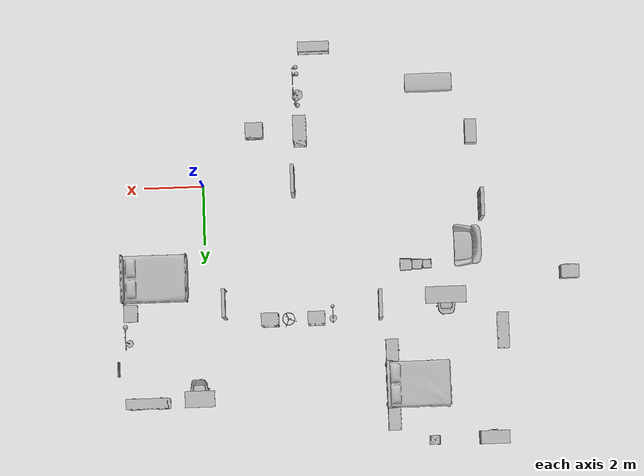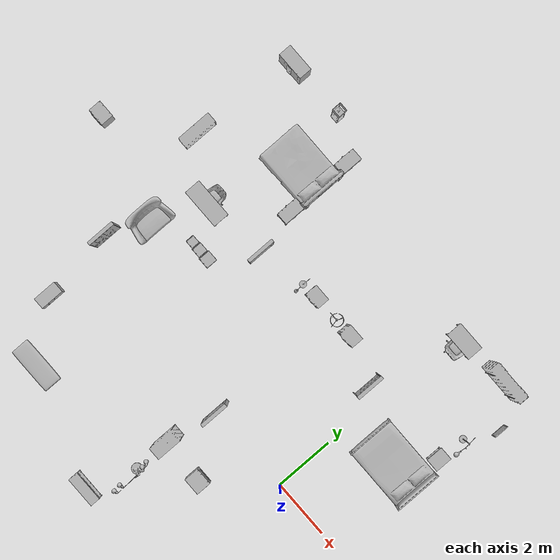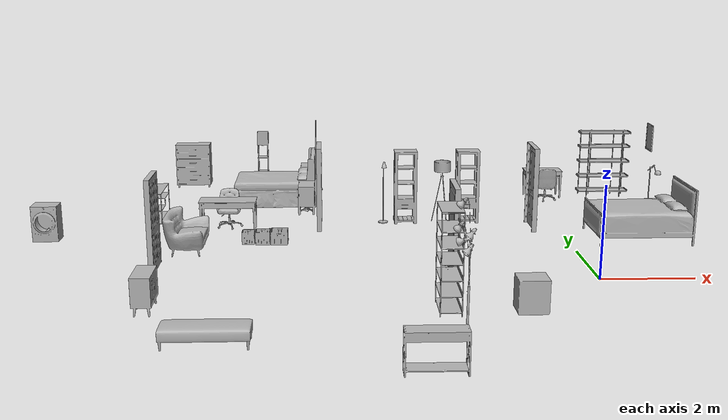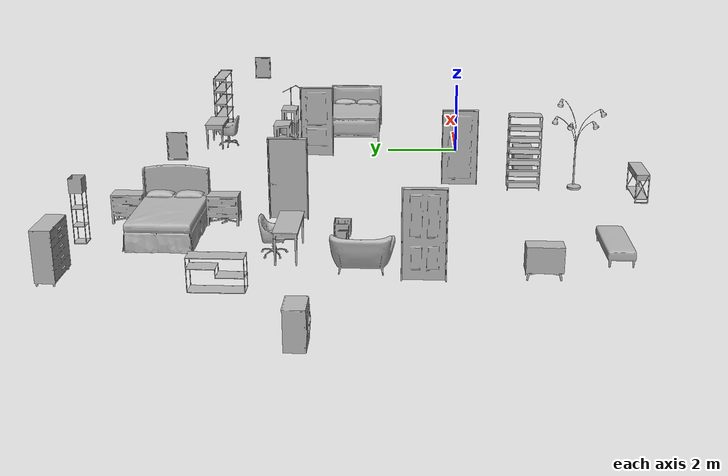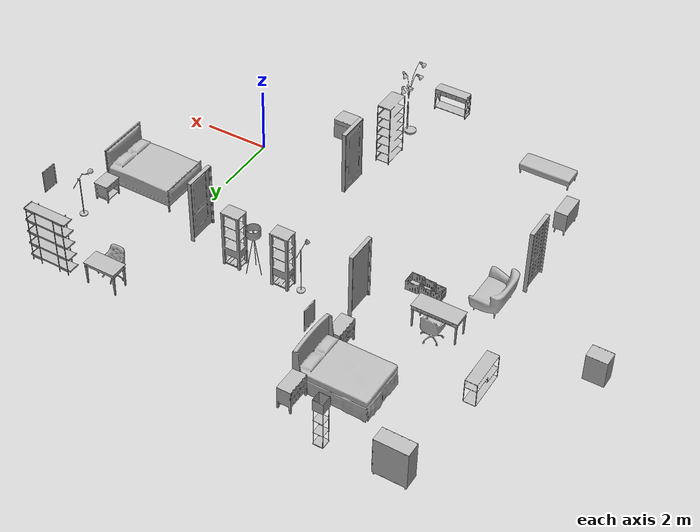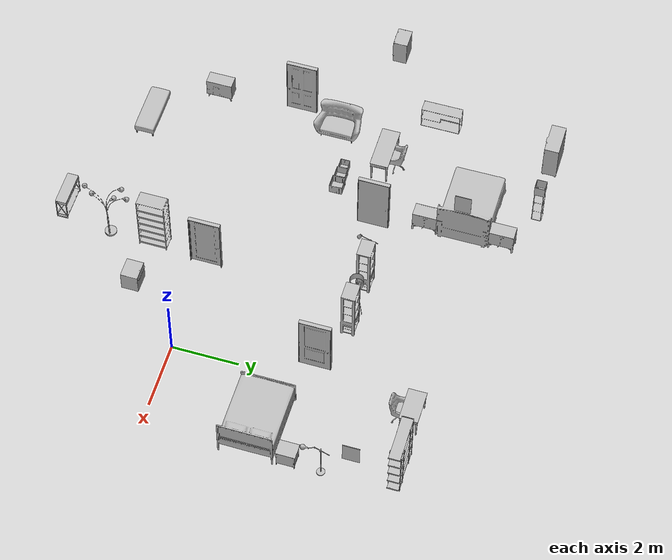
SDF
<sdf version="1.6">
 <world name="plasys_house">
  <model name="Headboards_O84d2b8173e76_lod0_0">
   <include>
    <uri>model://Headboards_O84d2b8173e76_lod0</uri>
    <pose>-7.051275837421418 6.946909320354462 0.0 0.0 0.0 4.71</pose>
    <static>true</static>
   </include>
  </model>
  <model name="Nightstands_O86bb94a2231c_lod0_1">
   <include>
    <uri>model://Nightstands_O86bb94a2231c_lod0</uri>
    <pose>-6.183524486422539 5.799987870454788 0.0 0.0 0.0 4.710000000000001</pose>
    <static>true</static>
   </include>
  </model>
  <model name="Nightstands_O86bb94a2231c_lod0_2">
   <include>
    <uri>model://Nightstands_O86bb94a2231c_lod0</uri>
    <pose>-6.183524486422539 8.099987870454788 0.0 0.0 0.0 4.710000000000001</pose>
    <static>true</static>
   </include>
  </model>
  <model name="HomeOfficeDesks_O593758bd9853_lod0_3">
   <include>
    <uri>model://HomeOfficeDesks_O593758bd9853_lod0</uri>
    <pose>-8.05 4.000014096498489 0.0 0.0 0.0 3.14</pose>
    <static>true</static>
   </include>
  </model>
  <model name="HomeOfficeDeskChairs_Oaed1cbd04270_lod0_4">
   <include>
    <uri>model://HomeOfficeDeskChairs_Oaed1cbd04270_lod0</uri>
    <pose>-8.068350660800935 4.34404425919056 0.0 0.0 0.0 0.0</pose>
    <static>true</static>
   </include>
  </model>
  <model name="FloorLamps_Oc1b0ac823eb9_lod0_5">
   <include>
    <uri>model://FloorLamps_Oc1b0ac823eb9_lod0</uri>
    <pose>-7.499942898750305 8.850000178813934 0.0 0.0 0.0 0.0</pose>
    <static>true</static>
   </include>
  </model>
  <model name="Bookcases_Of801682c0062_lod0_6">
   <include>
    <uri>model://Bookcases_Of801682c0062_lod0</uri>
    <pose>-9.94999475479126 5.2498297691345215 0.0 0.0 0.0 1.57</pose>
    <static>true</static>
   </include>
  </model>
  <model name="Dressers_O3026d3820106_lod0_7">
   <include>
    <uri>model://Dressers_O3026d3820106_lod0</uri>
    <pose>-9.500395596027374 8.800210866332055 0.0 0.0 0.0 0.0</pose>
    <static>true</static>
   </include>
  </model>
  <model name="aws_robomaker_residential_PortraitA_01_plasys">
   <include>
    <uri>model://aws_robomaker_residential_PortraitA_01_plasys</uri>
    <pose>-5.95 6.9 1.5 0.0 0.0 1.57</pose>
    <static>true</static>
   </include>
  </model>
  <light name="Main_Bedroom_Ceiling_Light" type="point">
   <pose>-8.0 6.3 3.000000 0 -0 0</pose>
   <diffuse>0.25 0.25 0.25 1</diffuse>
   <specular>0.1 0.1 0.1 1</specular>
   <attenuation>
    <range>20</range>
    <constant>0.32</constant>
    <linear>0.01</linear>
    <quadratic>0.03</quadratic>
   </attenuation>
   <cast_shadows>0</cast_shadows>
   <direction>0 0 -1</direction>
  </light>
  <model name="Ottomans_Oe0e3f5670b60_lod0_9">
   <include>
    <uri>model://Ottomans_Oe0e3f5670b60_lod0</uri>
    <pose>-7.75 -3.2500356435775757 0.0 0.0 0.0 0.0</pose>
    <static>true</static>
   </include>
  </model>
  <model name="Bookcases_Ocf3b7a3af58b_lod0_11">
   <include>
    <uri>model://Bookcases_Ocf3b7a3af58b_lod0</uri>
    <pose>-3.3498592734336854 -1.6500000000000001 0.0 0.0 0.0 4.71</pose>
    <static>true</static>
   </include>
  </model>
  <model name="LivingRoomChairs_Obc1361750757_lod0_12">
   <include>
    <uri>model://LivingRoomChairs_Obc1361750757_lod0</uri>
    <pose>-8.797515919804573 2.350000059604645 0.0 0.0 0.0 1.57</pose>
    <static>true</static>
   </include>
  </model>
  <model name="FloorLamps_O3abb34e1a719_lod0_13">
   <include>
    <uri>model://FloorLamps_O3abb34e1a719_lod0</uri>
    <pose>-3.2999999627470973 -3.0197394967079165 0.0 0.0 0.0 4.71</pose>
    <static>true</static>
   </include>
  </model>
  <model name="HomeStorageBasketsBinsAndContainers_Oa5676f43a3ee_lod0_15">
   <include>
    <uri>model://HomeStorageBasketsBinsAndContainers_Oa5676f43a3ee_lod0</uri>
    <pose>-7.100246167182923 2.9000000298023227 0.0 0.0 0.0 0.0</pose>
    <static>true</static>
   </include>
  </model>
  <model name="Cabinets_O34efdbc7cd71_lod0_17">
   <include>
    <uri>model://Cabinets_O34efdbc7cd71_lod0</uri>
    <pose>-3.9000000000000004 -4.558231431245804 0.0 0.0 0.0 3.14</pose>
    <static>true</static>
   </include>
  </model>
  <model name="AudioVideoMediaCabinets_O8c11fbab8c6f_lod0_18">
   <include>
    <uri>model://AudioVideoMediaCabinets_O8c11fbab8c6f_lod0</uri>
    <pose>-9.105899585783481 -1.4998804032802582 0.0 0.0 0.0 1.57</pose>
    <static>true</static>
   </include>
  </model>
  <light name="Living_Room_Ceiling_Light_1" type="point">
   <pose>-6.25 2.25 3.000000 0 -0 0</pose>
   <diffuse>0.25 0.25 0.25 1</diffuse>
   <specular>0.1 0.1 0.1 1</specular>
   <attenuation>
    <range>20</range>
    <constant>0.32</constant>
    <linear>0.01</linear>
    <quadratic>0.03</quadratic>
   </attenuation>
   <cast_shadows>0</cast_shadows>
   <direction>0 0 -1</direction>
  </light>
  <light name="Living_Room_Ceiling_Light_2" type="point">
   <pose>-6.25 -2.5 3.000000 0 -0 0</pose>
   <diffuse>0.25 0.25 0.25 1</diffuse>
   <specular>0.1 0.1 0.1 1</specular>
   <attenuation>
    <range>20</range>
    <constant>0.32</constant>
    <linear>0.01</linear>
    <quadratic>0.03</quadratic>
   </attenuation>
   <cast_shadows>0</cast_shadows>
   <direction>0 0 -1</direction>
  </light>
  <model name="ClothesDryer_bb487c6818dc_lod0_21">
   <include>
    <uri>model://ClothesDryer_bb487c6818dc_lod0</uri>
    <pose>-12.25 3.3435350567102433 0.0 0.0 0.0 0.0</pose>
    <static>true</static>
   </include>
  </model>
  <light name="Bathroom_Ceiling_Light" type="point">
   <pose>-11.0 1.05 3.000000 0 -0 0</pose>
   <diffuse>0.25 0.25 0.25 1</diffuse>
   <specular>0.1 0.1 0.1 1</specular>
   <attenuation>
    <range>20</range>
    <constant>0.32</constant>
    <linear>0.01</linear>
    <quadratic>0.03</quadratic>
   </attenuation>
   <cast_shadows>0</cast_shadows>
   <direction>0 0 -1</direction>
  </light>
  <model name="DishWasher_f2d1aeaead9b_lod0_23">
   <include>
    <uri>model://DishWasher_f2d1aeaead9b_lod0</uri>
    <pose>-1.8000070333480835 -1.8073143109679223 0.0 0.0 0.0 3.14</pose>
    <static>true</static>
   </include>
  </model>
  <light name="Kitchen_Ceiling_Light_1" type="point">
   <pose>0.0 0.0 3.000000 0 -0 0</pose>
   <diffuse>0.25 0.25 0.25 1</diffuse>
   <specular>0.1 0.1 0.1 1</specular>
   <attenuation>
    <range>20</range>
    <constant>0.32</constant>
    <linear>0.01</linear>
    <quadratic>0.03</quadratic>
   </attenuation>
   <cast_shadows>0</cast_shadows>
   <direction>0 0 -1</direction>
  </light>
  <model name="Headboards_Occ57434fb9f0_lod0_30">
   <include>
    <uri>model://Headboards_Occ57434fb9f0_lod0</uri>
    <pose>1.7022281408309938 3.100017046928406 0.0 0.0 0.0 4.71</pose>
    <static>true</static>
   </include>
  </model>
  <model name="Nightstands_O14c5f5d1199b_lod0_31">
   <include>
    <uri>model://Nightstands_O14c5f5d1199b_lod0</uri>
    <pose>2.560601028800011 4.2501323819160465 0.0 0.0 0.0 4.710000000000001</pose>
    <static>true</static>
   </include>
  </model>
  <model name="HomeOfficeDesks_Oab58b4fda1f7_lod0_33">
   <include>
    <uri>model://HomeOfficeDesks_Oab58b4fda1f7_lod0</uri>
    <pose>0.30000000000000004 7.200071614980698 0.0 0.0 0.0 0.0</pose>
    <static>true</static>
   </include>
  </model>
  <model name="HomeOfficeDeskChairs_Oaed1cbd04270_lod0_34">
   <include>
    <uri>model://HomeOfficeDeskChairs_Oaed1cbd04270_lod0</uri>
    <pose>0.3183506608009339 6.855955740809441 0.0 0.0 0.0 3.1399999999999997</pose>
    <static>true</static>
   </include>
  </model>
  <model name="Bookcases_Oe43e7e39f537_lod0_35">
   <include>
    <uri>model://Bookcases_Oe43e7e39f537_lod0</uri>
    <pose>2.0 7.3000001341104515 0.0 0.0 0.0 0.0</pose>
    <static>true</static>
   </include>
  </model>
  <model name="FloorLamps_Oa651b7cbe4d7_lod0_36">
   <include>
    <uri>model://FloorLamps_Oa651b7cbe4d7_lod0</uri>
    <pose>2.65 5.239001312851906 0.0 0.0 0.0 0.0</pose>
    <static>true</static>
   </include>
  </model>
  <model name="aws_robomaker_residential_PortraitA_02_plasys">
   <include>
    <uri>model://aws_robomaker_residential_PortraitA_02_plasys</uri>
    <pose>2.875 6.15 1.5 0.0 0.0 1.57</pose>
    <static>true</static>
   </include>
  </model>
  <light name="Bedroom_Ceiling_Light_1" type="point">
   <pose>1.0 5.0 3.000000 0 -0 0</pose>
   <diffuse>0.25 0.25 0.15 1</diffuse>
   <specular>0.1 0.1 0.1 1</specular>
   <attenuation>
    <range>20</range>
    <constant>0.32</constant>
    <linear>0.01</linear>
    <quadratic>0.03</quadratic>
   </attenuation>
   <cast_shadows>0</cast_shadows>
   <direction>0 0 -1</direction>
  </light>
  <model name="Bookcases_Oea630f7d6252_lod0_37">
   <include>
    <uri>model://Bookcases_Oea630f7d6252_lod0</uri>
    <pose>-2.148098075389862 4.657662504911423 0.0 0.0 0.0 0.0</pose>
    <static>true</static>
   </include>
  </model>
  <model name="Bookcases_Oea630f7d6252_lod0_38">
   <include>
    <uri>model://Bookcases_Oea630f7d6252_lod0</uri>
    <pose>-3.6980980753898622 4.657662504911423 0.0 0.0 0.0 0.0</pose>
    <static>true</static>
   </include>
  </model>
  <model name="FloorLamps_Occ4b77538a7e_lod0_39">
   <include>
    <uri>model://FloorLamps_Occ4b77538a7e_lod0</uri>
    <pose>-4.2499778270721436 4.631874124705791 0.0 0.0 0.0 0.0</pose>
    <static>true</static>
   </include>
  </model>
  <model name="FloorLamps_O75326ec60544_lod0_40">
   <include>
    <uri>model://FloorLamps_O75326ec60544_lod0</uri>
    <pose>-2.7759092628955844 4.658160516619683 0.0 0.0 0.0 0.0</pose>
    <static>true</static>
   </include>
  </model>
  <light name="Hallway_Ceiling_Light_1" type="point">
   <pose>-3.0 4.0 3.000000 0 -0 0</pose>
   <diffuse>0.15 0.15 0.15 1</diffuse>
   <specular>0.1 0.1 0.1 1</specular>
   <attenuation>
    <range>20</range>
    <constant>0.32</constant>
    <linear>0.01</linear>
    <quadratic>0.03</quadratic>
   </attenuation>
   <cast_shadows>0</cast_shadows>
   <direction>0 0 -1</direction>
  </light>
  <model name="door-Main_bedroom-Hallway">
   <include>
    <uri>model://DoorHingedSingleSwingRight_O888a160c5277_lod0</uri>
    <pose>-5.779999999999999 3.8175 0.0 0.0 0.0 6.281592653589794</pose>
    <static>true</static>
   </include>
  </model>
  <model name="door-Kitchen-Living_room">
   <include>
    <uri>model://DoorHingedSingleSwingLeft_O8ab66c006110_lod0</uri>
    <pose>-3.1199999999999997 -0.4325 0.0 0.0 0.0 3.1400000000000006</pose>
    <static>true</static>
   </include>
  </model>
  <model name="door-Bathroom-Living_room">
   <include>
    <uri>model://DoorHingedSingleSwingLeft_O351f940da952_lod0</uri>
    <pose>-9.28 1.4825 0.0 0.0 0.0 0.0</pose>
    <static>true</static>
   </include>
  </model>
  <model name="door-Hallway-Bedroom">
   <include>
    <uri>model://DoorHingedSingleSwingRight_O6596356fe884_lod0</uri>
    <pose>-0.5800000000000001 3.6175 0.0 0.0 0.0 6.281592653589794</pose>
    <static>true</static>
   </include>
  </model>
 </world>
</sdf>

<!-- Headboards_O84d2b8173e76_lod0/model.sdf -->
<sdf version="1.6">
	<model name="Headboards_O84d2b8173e76_lod0">
		<link name="main_link">
			<visual name="visual_RootNode">
				<geometry>
					<mesh>
						<uri>model://Headboards_O84d2b8173e76_lod0/meshes/visual_RootNode.dae</uri>
					</mesh>
				</geometry>
			</visual>
			<collision name="collision_RootNode_lod0_0">
				<geometry>
					<mesh>
						<uri>model://Headboards_O84d2b8173e76_lod0/meshes/collision_RootNode_lod0_0.dae</uri>
					</mesh>
				</geometry>
			</collision>
		</link>
	</model>
</sdf>

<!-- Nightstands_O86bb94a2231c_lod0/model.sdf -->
<sdf version="1.6">
	<model name="Nightstands_O86bb94a2231c_lod0">
		<link name="main_link">
			<visual name="visual_RootNode">
				<geometry>
					<mesh>
						<uri>model://Nightstands_O86bb94a2231c_lod0/meshes/visual_RootNode.dae</uri>
					</mesh>
				</geometry>
			</visual>
			<collision name="collision_RootNode_lod0_0">
				<geometry>
					<mesh>
						<uri>model://Nightstands_O86bb94a2231c_lod0/meshes/collision_RootNode_lod0_0.dae</uri>
					</mesh>
				</geometry>
			</collision>
		</link>
	</model>
</sdf>

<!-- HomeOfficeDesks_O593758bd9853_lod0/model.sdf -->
<sdf version="1.6">
	<model name="HomeOfficeDesks_O593758bd9853_lod0">
		<link name="main_link">
			<visual name="visual_RootNode">
				<geometry>
					<mesh>
						<uri>model://HomeOfficeDesks_O593758bd9853_lod0/meshes/visual_RootNode.dae</uri>
					</mesh>
				</geometry>
			</visual>
			<collision name="collision_RootNode_lod0_0">
				<geometry>
					<mesh>
						<uri>model://HomeOfficeDesks_O593758bd9853_lod0/meshes/collision_RootNode_lod0_0.dae</uri>
					</mesh>
				</geometry>
			</collision>
		</link>
	</model>
</sdf>

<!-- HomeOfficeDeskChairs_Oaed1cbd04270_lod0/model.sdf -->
<sdf version="1.6">
	<model name="HomeOfficeDeskChairs_Oaed1cbd04270_lod0">
		<link name="main_link">
			<visual name="visual_RootNode">
				<geometry>
					<mesh>
						<uri>model://HomeOfficeDeskChairs_Oaed1cbd04270_lod0/meshes/visual_RootNode.dae</uri>
					</mesh>
				</geometry>
			</visual>
			<collision name="collision_RootNode_lod0_0">
				<geometry>
					<mesh>
						<uri>model://HomeOfficeDeskChairs_Oaed1cbd04270_lod0/meshes/collision_RootNode_lod0_0.dae</uri>
					</mesh>
				</geometry>
			</collision>
		</link>
	</model>
</sdf>

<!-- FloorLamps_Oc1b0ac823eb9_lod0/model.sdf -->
<sdf version="1.6">
	<model name="FloorLamps_Oc1b0ac823eb9_lod0">
		<link name="main_link">
			<visual name="visual_RootNode">
				<geometry>
					<mesh>
						<uri>model://FloorLamps_Oc1b0ac823eb9_lod0/meshes/visual_RootNode.dae</uri>
					</mesh>
				</geometry>
			</visual>
			<collision name="collision_RootNode_lod0_0">
				<geometry>
					<mesh>
						<uri>model://FloorLamps_Oc1b0ac823eb9_lod0/meshes/collision_RootNode_lod0_0.dae</uri>
					</mesh>
				</geometry>
			</collision>
		</link>
	</model>
</sdf>

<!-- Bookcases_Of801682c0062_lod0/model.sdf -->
<sdf version="1.6">
	<model name="Bookcases_Of801682c0062_lod0">
		<link name="main_link">
			<visual name="visual_RootNode">
				<geometry>
					<mesh>
						<uri>model://Bookcases_Of801682c0062_lod0/meshes/visual_RootNode.dae</uri>
					</mesh>
				</geometry>
			</visual>
			<collision name="collision_RootNode_lod0_0">
				<geometry>
					<mesh>
						<uri>model://Bookcases_Of801682c0062_lod0/meshes/collision_RootNode_lod0_0.dae</uri>
					</mesh>
				</geometry>
			</collision>
		</link>
	</model>
</sdf>

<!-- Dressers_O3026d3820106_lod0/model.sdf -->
<sdf version="1.6">
	<model name="Dressers_O3026d3820106_lod0">
		<link name="main_link">
			<visual name="visual_RootNode">
				<geometry>
					<mesh>
						<uri>model://Dressers_O3026d3820106_lod0/meshes/visual_RootNode.dae</uri>
					</mesh>
				</geometry>
			</visual>
			<collision name="collision_RootNode_lod0_0">
				<geometry>
					<mesh>
						<uri>model://Dressers_O3026d3820106_lod0/meshes/collision_RootNode_lod0_0.dae</uri>
					</mesh>
				</geometry>
			</collision>
		</link>
	</model>
</sdf>

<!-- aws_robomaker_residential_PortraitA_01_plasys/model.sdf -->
<sdf version="1.6">
  <model name="aws_robomaker_residential_PortraitA_01">
    <link name="link">
      <inertial>
        <mass>1</mass>
      </inertial>
      <collision name="collision">
        <geometry>
          <mesh>
            <uri>model://aws_robomaker_residential_PortraitA_01_plasys/meshes/aws_PortraitA_01_collision.DAE</uri>
            <scale>1 1 1</scale>
          </mesh>
        </geometry>
      </collision>
      <visual name="visual">
	    <geometry>
          <mesh>
            <uri>model://aws_robomaker_residential_PortraitA_01_plasys/meshes/aws_PortraitA_01_visual.DAE</uri>
          </mesh>
        </geometry>
      <meta> <layer> 2 </layer></meta>
</visual>
    </link>
	<static>1</static>
  </model>
</sdf>

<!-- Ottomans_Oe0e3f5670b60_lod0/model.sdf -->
<sdf version="1.6">
	<model name="Ottomans_Oe0e3f5670b60_lod0">
		<link name="main_link">
			<visual name="visual_RootNode">
				<geometry>
					<mesh>
						<uri>model://Ottomans_Oe0e3f5670b60_lod0/meshes/visual_RootNode.dae</uri>
					</mesh>
				</geometry>
			</visual>
			<collision name="collision_RootNode_lod0_0">
				<geometry>
					<mesh>
						<uri>model://Ottomans_Oe0e3f5670b60_lod0/meshes/collision_RootNode_lod0_0.dae</uri>
					</mesh>
				</geometry>
			</collision>
		</link>
	</model>
</sdf>

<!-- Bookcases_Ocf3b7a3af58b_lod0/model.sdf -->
<sdf version="1.6">
	<model name="Bookcases_Ocf3b7a3af58b_lod0">
		<link name="main_link">
			<visual name="visual_RootNode">
				<geometry>
					<mesh>
						<uri>model://Bookcases_Ocf3b7a3af58b_lod0/meshes/visual_RootNode.dae</uri>
					</mesh>
				</geometry>
			</visual>
			<collision name="collision_RootNode_lod0_0">
				<geometry>
					<mesh>
						<uri>model://Bookcases_Ocf3b7a3af58b_lod0/meshes/collision_RootNode_lod0_0.dae</uri>
					</mesh>
				</geometry>
			</collision>
		</link>
	</model>
</sdf>

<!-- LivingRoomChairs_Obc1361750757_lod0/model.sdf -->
<sdf version="1.6">
	<model name="LivingRoomChairs_Obc1361750757_lod0">
		<link name="main_link">
			<visual name="visual_RootNode">
				<geometry>
					<mesh>
						<uri>model://LivingRoomChairs_Obc1361750757_lod0/meshes/visual_RootNode.dae</uri>
					</mesh>
				</geometry>
			</visual>
			<collision name="collision_RootNode_lod0_0">
				<geometry>
					<mesh>
						<uri>model://LivingRoomChairs_Obc1361750757_lod0/meshes/collision_RootNode_lod0_0.dae</uri>
					</mesh>
				</geometry>
			</collision>
		</link>
	</model>
</sdf>

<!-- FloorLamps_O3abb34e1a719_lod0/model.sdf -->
<sdf version="1.6">
	<model name="FloorLamps_O3abb34e1a719_lod0">
		<link name="main_link">
			<visual name="visual_RootNode">
				<geometry>
					<mesh>
						<uri>model://FloorLamps_O3abb34e1a719_lod0/meshes/visual_RootNode.dae</uri>
					</mesh>
				</geometry>
			</visual>
			<collision name="collision_RootNode_lod0_0">
				<geometry>
					<mesh>
						<uri>model://FloorLamps_O3abb34e1a719_lod0/meshes/collision_RootNode_lod0_0.dae</uri>
					</mesh>
				</geometry>
			</collision>
		</link>
	</model>
</sdf>

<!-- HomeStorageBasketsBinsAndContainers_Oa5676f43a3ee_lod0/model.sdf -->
<sdf version="1.6">
	<model name="HomeStorageBasketsBinsAndContainers_Oa5676f43a3ee_lod0">
		<link name="main_link">
			<visual name="visual_RootNode">
				<geometry>
					<mesh>
						<uri>model://HomeStorageBasketsBinsAndContainers_Oa5676f43a3ee_lod0/meshes/visual_RootNode.dae</uri>
					</mesh>
				</geometry>
			</visual>
			<collision name="collision_RootNode_lod0_0">
				<geometry>
					<mesh>
						<uri>model://HomeStorageBasketsBinsAndContainers_Oa5676f43a3ee_lod0/meshes/collision_RootNode_lod0_0.dae</uri>
					</mesh>
				</geometry>
			</collision>
		</link>
	</model>
</sdf>

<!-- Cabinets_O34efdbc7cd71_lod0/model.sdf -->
<sdf version="1.6">
	<model name="Cabinets_O34efdbc7cd71_lod0">
		<link name="main_link">
			<visual name="visual_RootNode">
				<geometry>
					<mesh>
						<uri>model://Cabinets_O34efdbc7cd71_lod0/meshes/visual_RootNode.dae</uri>
					</mesh>
				</geometry>
			</visual>
			<collision name="collision_RootNode_lod0_0">
				<geometry>
					<mesh>
						<uri>model://Cabinets_O34efdbc7cd71_lod0/meshes/collision_RootNode_lod0_0.dae</uri>
					</mesh>
				</geometry>
			</collision>
		</link>
	</model>
</sdf>

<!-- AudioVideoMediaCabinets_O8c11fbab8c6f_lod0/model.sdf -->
<sdf version="1.6">
	<model name="AudioVideoMediaCabinets_O8c11fbab8c6f_lod0">
		<link name="main_link">
			<visual name="visual_RootNode">
				<geometry>
					<mesh>
						<uri>model://AudioVideoMediaCabinets_O8c11fbab8c6f_lod0/meshes/visual_RootNode.dae</uri>
					</mesh>
				</geometry>
			</visual>
			<collision name="collision_RootNode_lod0_0">
				<geometry>
					<mesh>
						<uri>model://AudioVideoMediaCabinets_O8c11fbab8c6f_lod0/meshes/collision_RootNode_lod0_0.dae</uri>
					</mesh>
				</geometry>
			</collision>
		</link>
	</model>
</sdf>

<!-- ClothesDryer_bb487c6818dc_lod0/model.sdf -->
<sdf version='1.6'>
  <model name='18_ClothesDryer'>
    <link name='body'>
	  <inertial>
        <mass>60</mass>
        <pose frame=''>0 0 0 0 0 0</pose>
        <inertia>
          <ixx>4.7857229765</ixx>
          <ixy>0</ixy>
          <ixz>0</ixz>
          <iyy>5.420907189</iyy>
          <iyz>0</iyz>
          <izz>2.9940348365</izz>
        </inertia>
      </inertial>
      <pose frame=''>0 0 0 0 -0 0</pose>
      <self_collide>0</self_collide>
      <kinematic>0</kinematic>
      <gravity>1</gravity>
      <visual name='visual'>
        <geometry>
          <mesh>
            <uri>model://ClothesDryer_bb487c6818dc_lod0/meshes/visual_LowPoly_18_ClothesDryer.dae</uri>
          </mesh>
        </geometry>
		<meta> <layer> 1 </layer></meta>
      </visual>
      <collision name='collision_0'>
        <laser_retro>0</laser_retro>
        <max_contacts>10</max_contacts>
        <pose frame=''>0 0 0 0 -0 0</pose>
        <geometry>
          <mesh>
            <uri>model://ClothesDryer_bb487c6818dc_lod0/meshes/collision_18_ClothesDryer.dae</uri>
            <scale>1 1 1</scale>
          </mesh>
        </geometry>
		<surface>
          <friction>
            <ode>
              <mu>0.6</mu>
              <mu2>0.6</mu2>
              <fdir1>0 0 0</fdir1>
              <slip1>0</slip1>
              <slip2>0</slip2>
            </ode>
            <torsional>
              <coefficient>1</coefficient>
              <patch_radius>0</patch_radius>
              <surface_radius>0</surface_radius>
              <use_patch_radius>1</use_patch_radius>
              <ode>
                <slip>0</slip>
              </ode>
            </torsional>
          </friction>
        </surface>
      </collision>
    </link>
    <static>true</static>
  </model>
</sdf>

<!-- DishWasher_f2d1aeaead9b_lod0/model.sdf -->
<sdf version='1.6'>
  <model name='10_DishWasher'>
    <link name='body'>
	  <inertial>
        <mass>30</mass>
        <pose frame=''>0 0 0 0 0 0</pose>
        <inertia>
          <ixx>1.86624999</ixx>
          <ixy>0</ixy>
          <ixz>0</ixz>
          <iyy>2.09024999</iyy>
          <iyz>0</iyz>
          <izz>1.576</izz>
        </inertia>
      </inertial>
      <pose frame=''>0 0 0 0 -0 0</pose>
      <self_collide>0</self_collide>
      <kinematic>0</kinematic>
      <gravity>1</gravity>
      <visual name='visual'>
        <geometry>
          <mesh>
            <uri>model://DishWasher_f2d1aeaead9b_lod0/meshes/visual_LowPoly_10_DishWasher.dae</uri>
          </mesh>
        </geometry>
		<meta> <layer> 1 </layer></meta>
      </visual>
      <collision name='collision_0'>
        <laser_retro>0</laser_retro>
        <max_contacts>10</max_contacts>
        <pose frame=''>0 0 0 0 -0 0</pose>
        <geometry>
          <mesh>
            <uri>model://DishWasher_f2d1aeaead9b_lod0/meshes/collision_10_DishWasher.dae</uri>
            <scale>1 1 1</scale>
          </mesh>
        </geometry>
		<surface>
          <friction>
            <ode>
              <mu>0.4</mu>
              <mu2>0.4</mu2>
              <fdir1>0 0 0</fdir1>
              <slip1>0</slip1>
              <slip2>0</slip2>
            </ode>
            <torsional>
              <coefficient>1</coefficient>
              <patch_radius>0</patch_radius>
              <surface_radius>0</surface_radius>
              <use_patch_radius>1</use_patch_radius>
              <ode>
                <slip>0</slip>
              </ode>
            </torsional>
          </friction>
        </surface>
      </collision>
    </link>
    <static>true</static>
  </model>
</sdf>

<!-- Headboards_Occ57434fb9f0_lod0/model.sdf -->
<sdf version="1.6">
	<model name="Headboards_Occ57434fb9f0_lod0">
		<link name="main_link">
			<visual name="visual_RootNode">
				<geometry>
					<mesh>
						<uri>model://Headboards_Occ57434fb9f0_lod0/meshes/visual_RootNode.dae</uri>
					</mesh>
				</geometry>
			</visual>
			<collision name="collision_RootNode_lod0_0">
				<geometry>
					<mesh>
						<uri>model://Headboards_Occ57434fb9f0_lod0/meshes/collision_RootNode_lod0_0.dae</uri>
					</mesh>
				</geometry>
			</collision>
		</link>
	</model>
</sdf>

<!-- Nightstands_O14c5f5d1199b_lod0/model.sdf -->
<sdf version="1.6">
	<model name="Nightstands_O14c5f5d1199b_lod0">
		<link name="main_link">
			<visual name="visual_RootNode">
				<geometry>
					<mesh>
						<uri>model://Nightstands_O14c5f5d1199b_lod0/meshes/visual_RootNode.dae</uri>
					</mesh>
				</geometry>
			</visual>
			<collision name="collision_RootNode_lod0_0">
				<geometry>
					<mesh>
						<uri>model://Nightstands_O14c5f5d1199b_lod0/meshes/collision_RootNode_lod0_0.dae</uri>
					</mesh>
				</geometry>
			</collision>
		</link>
	</model>
</sdf>

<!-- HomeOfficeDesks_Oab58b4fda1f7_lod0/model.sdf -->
<sdf version="1.6">
	<model name="HomeOfficeDesks_Oab58b4fda1f7_lod0">
		<link name="main_link">
			<visual name="visual_RootNode">
				<geometry>
					<mesh>
						<uri>model://HomeOfficeDesks_Oab58b4fda1f7_lod0/meshes/visual_RootNode.dae</uri>
					</mesh>
				</geometry>
			</visual>
			<collision name="collision_RootNode_lod0_0">
				<geometry>
					<mesh>
						<uri>model://HomeOfficeDesks_Oab58b4fda1f7_lod0/meshes/collision_RootNode_lod0_0.dae</uri>
					</mesh>
				</geometry>
			</collision>
		</link>
	</model>
</sdf>

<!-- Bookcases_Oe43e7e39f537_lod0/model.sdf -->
<sdf version="1.6">
	<model name="Bookcases_Oe43e7e39f537_lod0">
		<link name="main_link">
			<visual name="visual_RootNode">
				<geometry>
					<mesh>
						<uri>model://Bookcases_Oe43e7e39f537_lod0/meshes/visual_RootNode.dae</uri>
					</mesh>
				</geometry>
			</visual>
			<collision name="collision_RootNode_lod0_0">
				<geometry>
					<mesh>
						<uri>model://Bookcases_Oe43e7e39f537_lod0/meshes/collision_RootNode_lod0_0.dae</uri>
					</mesh>
				</geometry>
			</collision>
		</link>
	</model>
</sdf>

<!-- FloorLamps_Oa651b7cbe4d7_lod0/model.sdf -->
<sdf version="1.6">
	<model name="FloorLamps_Oa651b7cbe4d7_lod0">
		<link name="main_link">
			<visual name="visual_RootNode">
				<geometry>
					<mesh>
						<uri>model://FloorLamps_Oa651b7cbe4d7_lod0/meshes/visual_RootNode.dae</uri>
					</mesh>
				</geometry>
			</visual>
			<collision name="collision_RootNode_lod0_0">
				<geometry>
					<mesh>
						<uri>model://FloorLamps_Oa651b7cbe4d7_lod0/meshes/collision_RootNode_lod0_0.dae</uri>
					</mesh>
				</geometry>
			</collision>
		</link>
	</model>
</sdf>

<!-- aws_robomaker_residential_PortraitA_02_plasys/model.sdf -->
<sdf version="1.6">
  <model name="aws_robomaker_residential_PortraitA_02">
    <link name="link">
      <inertial>
        <mass>1</mass>
      </inertial>
      <collision name="collision">
        <geometry>
          <mesh>
            <uri>model://aws_robomaker_residential_PortraitA_02_plasys/meshes/aws_PortraitA_01_collision.DAE</uri>
            <scale>1 1 1</scale>
          </mesh>
        </geometry>
      </collision>
      <visual name="visual">
	    <geometry>
          <mesh>
            <uri>model://aws_robomaker_residential_PortraitA_02_plasys/meshes/aws_PortraitA_01_visual.DAE</uri>
          </mesh>
        </geometry>
      <meta> <layer> 2 </layer></meta>
</visual>
    </link>
	<static>1</static>
  </model>
</sdf>

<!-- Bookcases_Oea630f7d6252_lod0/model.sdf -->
<sdf version="1.6">
	<model name="Bookcases_Oea630f7d6252_lod0">
		<link name="main_link">
			<visual name="visual_RootNode">
				<geometry>
					<mesh>
						<uri>model://Bookcases_Oea630f7d6252_lod0/meshes/visual_RootNode.dae</uri>
					</mesh>
				</geometry>
			</visual>
			<collision name="collision_RootNode_lod0_0">
				<geometry>
					<mesh>
						<uri>model://Bookcases_Oea630f7d6252_lod0/meshes/collision_RootNode_lod0_0.dae</uri>
					</mesh>
				</geometry>
			</collision>
		</link>
	</model>
</sdf>

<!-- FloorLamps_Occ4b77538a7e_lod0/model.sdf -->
<sdf version="1.6">
	<model name="FloorLamps_Occ4b77538a7e_lod0">
		<link name="main_link">
			<visual name="visual_RootNode">
				<geometry>
					<mesh>
						<uri>model://FloorLamps_Occ4b77538a7e_lod0/meshes/visual_RootNode.dae</uri>
					</mesh>
				</geometry>
			</visual>
			<collision name="collision_RootNode_lod0_0">
				<geometry>
					<mesh>
						<uri>model://FloorLamps_Occ4b77538a7e_lod0/meshes/collision_RootNode_lod0_0.dae</uri>
					</mesh>
				</geometry>
			</collision>
		</link>
	</model>
</sdf>

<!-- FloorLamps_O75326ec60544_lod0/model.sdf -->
<sdf version="1.6">
	<model name="FloorLamps_O75326ec60544_lod0">
		<link name="main_link">
			<visual name="visual_RootNode">
				<geometry>
					<mesh>
						<uri>model://FloorLamps_O75326ec60544_lod0/meshes/visual_RootNode.dae</uri>
					</mesh>
				</geometry>
			</visual>
			<collision name="collision_RootNode_lod0_0">
				<geometry>
					<mesh>
						<uri>model://FloorLamps_O75326ec60544_lod0/meshes/collision_RootNode_lod0_0.dae</uri>
					</mesh>
				</geometry>
			</collision>
		</link>
	</model>
</sdf>

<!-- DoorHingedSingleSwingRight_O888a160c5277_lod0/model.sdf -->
<sdf version="1.6">
	<model name="DoorHingedSingleSwingRight_O888a160c5277_lod0">
		<link name="frame_link">
			<pose>-0.05773276090621948 0.45874738693237305 -0.0 0 0 0</pose>
			<visual name="visual_Door_right_frame_zero_panel_wood_light">
				<geometry>
					<mesh>
						<uri>model://DoorHingedSingleSwingRight_O888a160c5277_lod0/meshes/visual_Door_right_frame_zero_panel_wood_light.dae</uri>
					</mesh>
				</geometry>
				<pose>0 0 0 0 0 0</pose>
			</visual>
			<collision name="collision_Door_right_frame_zero_panel_wood_light_lod0_0">
				<geometry>
					<mesh>
						<uri>model://DoorHingedSingleSwingRight_O888a160c5277_lod0/meshes/collision_Door_right_frame_zero_panel_wood_light_lod0_0.dae</uri>
					</mesh>
				</geometry>
				<pose>0 0 0 0 0 0</pose>
				<surface>
					<contact>
						<collide_bitmask>1</collide_bitmask>
					</contact>
				</surface>
			</collision>
		</link>
		<link name="door_link">
			<pose>0 0 0 0 0 0</pose>
			<inertial>
				<mass>1.0</mass>
				<inertia>
					<ixx>0.41441923703</ixx>
					<ixy>0.0</ixy>
					<ixz>0.0</ixz>
					<iyy>0.073070729875</iyy>
					<iyz>0.0</iyz>
					<izz>0.34294104678</izz>
				</inertia>
			</inertial>
			<visual name="visual_Door_right_door_zero_panel_wood_light">
				<geometry>
					<mesh>
						<uri>model://DoorHingedSingleSwingRight_O888a160c5277_lod0/meshes/visual_Door_right_door_zero_panel_wood_light.dae</uri>
					</mesh>
				</geometry>
				<pose>-0.05773276090621948 0.45874738693237305 -0.0 0 0 0</pose>
			</visual>
			<collision name="collision_Door_right_door_zero_panel_wood_light_lod0_0">
				<geometry>
					<mesh>
						<uri>model://DoorHingedSingleSwingRight_O888a160c5277_lod0/meshes/collision_Door_right_door_zero_panel_wood_light_lod0_0.dae</uri>
					</mesh>
				</geometry>
				<pose>-0.05773276090621948 0.45874738693237305 -0.0 0 0 0</pose>
				<surface>
					<contact>
						<collide_bitmask>1</collide_bitmask>
					</contact>
				</surface>
			</collision>
		</link>
		<joint name="world_joint" type="fixed">
			<child>frame_link</child>
			<parent>world</parent>
			<axis>
				<limit>
					<lower>0</lower>
					<upper>0</upper>
				</limit>
				<xyz>0 1 0</xyz>
				<dynamics>
					<damping>1</damping>
					<spring_reference>0</spring_reference>
					<spring_stiffness>0</spring_stiffness>
				</dynamics>
			</axis>
			<physics>
				<ode>
					<cfm_damping>1</cfm_damping>
					<limit/>
					<cfm>0</cfm>
					<erp>0.2</erp>
				</ode>
			</physics>
		</joint>
		<joint name="hinge_joint" type="revolute">
			<parent>frame_link</parent>
			<child>door_link</child>
			<pose>0 0 0 0 0 0</pose>
			<axis>
				<xyz>0 0 -1</xyz>
				<limit>
					<lower>0</lower>
					<upper>1.5707963267948966</upper>
				</limit>
				<dynamics>
					<damping>1</damping>
					<friction>1</friction>
					<spring_reference>0</spring_reference>
					<spring_stiffness>0</spring_stiffness>
				</dynamics>
				<use_parent_model_frame>0</use_parent_model_frame>
			</axis>
			<physics>
				<ode>
					<cfm_damping>1</cfm_damping>
					<limit>
						<cfm>0</cfm>
						<erp>0.2</erp>
					</limit>
				</ode>
			</physics>
		</joint>
	</model>
</sdf>

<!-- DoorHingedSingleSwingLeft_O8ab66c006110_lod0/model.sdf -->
<sdf version="1.6">
	<model name="DoorHingedSingleSwingLeft_O8ab66c006110_lod0">
		<link name="frame_link">
			<pose>-0.05773424357175827 -0.45874273777008057 -0.0 0 0 0</pose>
			<visual name="visual_Door_left_frame_one_panel_wood_dark">
				<geometry>
					<mesh>
						<uri>model://DoorHingedSingleSwingLeft_O8ab66c006110_lod0/meshes/visual_Door_left_frame_one_panel_wood_dark.dae</uri>
					</mesh>
				</geometry>
				<pose>0 0 0 0 0 0</pose>
			</visual>
			<collision name="Door_left_frame_one_panel_wood_dark_Collision_05">
				<geometry>
					<mesh>
						<uri>model://DoorHingedSingleSwingLeft_O8ab66c006110_lod0/meshes/Door_left_frame_one_panel_wood_dark_Collision_05.dae</uri>
					</mesh>
				</geometry>
				<pose>0 0 0 0 0 0</pose>
				<surface>
					<contact>
						<collide_bitmask>1</collide_bitmask>
					</contact>
				</surface>
			</collision>
		</link>
		<link name="door_link">
			<pose>0 0 0 0 0 0</pose>
			<inertial>
				<mass>1.0</mass>
				<inertia>
					<ixx>0.41441923703</ixx>
					<ixy>0.0</ixy>
					<ixz>0.0</ixz>
					<iyy>0.073070729875</iyy>
					<iyz>0.0</iyz>
					<izz>0.34294104678</izz>
				</inertia>
			</inertial>
			<visual name="visual_Door_left_door_one_panel_wood_dark">
				<geometry>
					<mesh>
						<uri>model://DoorHingedSingleSwingLeft_O8ab66c006110_lod0/meshes/visual_Door_left_door_one_panel_wood_dark.dae</uri>
					</mesh>
				</geometry>
				<pose>-0.05773424357175827 -0.45874273777008057 -0.0 0 0 0</pose>
			</visual>
			<collision name="Door_left_door_one_panel_wood_dark_Collision_06">
				<geometry>
					<mesh>
						<uri>model://DoorHingedSingleSwingLeft_O8ab66c006110_lod0/meshes/Door_left_door_one_panel_wood_dark_Collision_06.dae</uri>
					</mesh>
				</geometry>
				<pose>-0.05773279070854187 -0.45874738693237305 -0.0 0 0 0</pose>
				<surface>
					<contact>
						<collide_bitmask>1</collide_bitmask>
					</contact>
				</surface>
			</collision>
		</link>
		<joint name="world_joint" type="fixed">
			<child>frame_link</child>
			<parent>world</parent>
			<axis>
				<limit>
					<lower>0</lower>
					<upper>0</upper>
				</limit>
				<xyz>0 1 0</xyz>
				<dynamics>
					<damping>1</damping>
					<spring_reference>0</spring_reference>
					<spring_stiffness>0</spring_stiffness>
				</dynamics>
			</axis>
			<physics>
				<ode>
					<cfm_damping>1</cfm_damping>
					<limit/>
					<cfm>0</cfm>
					<erp>0.2</erp>
				</ode>
			</physics>
		</joint>
		<joint name="hinge_joint" type="revolute">
			<parent>frame_link</parent>
			<child>door_link</child>
			<pose>0 0 0 0 0 0</pose>
			<axis>
				<xyz>0 0 1</xyz>
				<limit>
					<lower>0</lower>
					<upper>1.5707963267948966</upper>
				</limit>
				<dynamics>
					<damping>1</damping>
					<friction>1</friction>
					<spring_reference>0</spring_reference>
					<spring_stiffness>0</spring_stiffness>
				</dynamics>
				<use_parent_model_frame>0</use_parent_model_frame>
			</axis>
			<physics>
				<ode>
					<cfm_damping>1</cfm_damping>
					<limit>
						<cfm>0</cfm>
						<erp>0.2</erp>
					</limit>
				</ode>
			</physics>
		</joint>
	</model>
</sdf>

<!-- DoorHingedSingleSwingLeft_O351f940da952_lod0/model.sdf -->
<sdf version="1.6">
	<model name="DoorHingedSingleSwingLeft_O351f940da952_lod0">
		<link name="frame_link">
			<pose>-0.05773424357175827 -0.45874273777008057 -0.0 0 0 0</pose>
			<visual name="visual_Door_left_frame_four_panel_painted">
				<geometry>
					<mesh>
						<uri>model://DoorHingedSingleSwingLeft_O351f940da952_lod0/meshes/visual_Door_left_frame_four_panel_painted.dae</uri>
					</mesh>
				</geometry>
				<pose>0 0 0 0 0 0</pose>
			</visual>
			<collision name="Door_left_frame_four_panel_painted_Collision_03">
				<geometry>
					<mesh>
						<uri>model://DoorHingedSingleSwingLeft_O351f940da952_lod0/meshes/Door_left_frame_four_panel_painted_Collision_03.dae</uri>
					</mesh>
				</geometry>
				<pose>0 0 0 0 0 0</pose>
				<surface>
					<contact>
						<collide_bitmask>1</collide_bitmask>
					</contact>
				</surface>
			</collision>
		</link>
		<link name="door_link">
			<pose>0 0 0 0 0 0</pose>
			<inertial>
				<mass>1.0</mass>
				<inertia>
					<ixx>0.41441923703</ixx>
					<ixy>0.0</ixy>
					<ixz>0.0</ixz>
					<iyy>0.073070729875</iyy>
					<iyz>0.0</iyz>
					<izz>0.34294104678</izz>
				</inertia>
			</inertial>
			<visual name="visual_Door_left_door_four_panel_painted">
				<geometry>
					<mesh>
						<uri>model://DoorHingedSingleSwingLeft_O351f940da952_lod0/meshes/visual_Door_left_door_four_panel_painted.dae</uri>
					</mesh>
				</geometry>
				<pose>-0.05773424357175827 -0.45874273777008057 -0.0 0 0 0</pose>
			</visual>
			<collision name="Door_left_door_four_panel_painted_Collision_02">
				<geometry>
					<mesh>
						<uri>model://DoorHingedSingleSwingLeft_O351f940da952_lod0/meshes/Door_left_door_four_panel_painted_Collision_02.dae</uri>
					</mesh>
				</geometry>
				<pose>-0.05773279070854187 -0.45874738693237305 -0.0 0 0 0</pose>
				<surface>
					<contact>
						<collide_bitmask>1</collide_bitmask>
					</contact>
				</surface>
			</collision>
		</link>
		<joint name="world_joint" type="fixed">
			<child>frame_link</child>
			<parent>world</parent>
			<axis>
				<limit>
					<lower>0</lower>
					<upper>0</upper>
				</limit>
				<xyz>0 1 0</xyz>
				<dynamics>
					<damping>1</damping>
					<spring_reference>0</spring_reference>
					<spring_stiffness>0</spring_stiffness>
				</dynamics>
			</axis>
			<physics>
				<ode>
					<cfm_damping>1</cfm_damping>
					<limit/>
					<cfm>0</cfm>
					<erp>0.2</erp>
				</ode>
			</physics>
		</joint>
		<joint name="hinge_joint" type="revolute">
			<parent>frame_link</parent>
			<child>door_link</child>
			<pose>0 0 0 0 0 0</pose>
			<axis>
				<xyz>0 0 1</xyz>
				<limit>
					<lower>0</lower>
					<upper>1.5707963267948966</upper>
				</limit>
				<dynamics>
					<damping>1</damping>
					<friction>1</friction>
					<spring_reference>0</spring_reference>
					<spring_stiffness>0</spring_stiffness>
				</dynamics>
				<use_parent_model_frame>0</use_parent_model_frame>
			</axis>
			<physics>
				<ode>
					<cfm_damping>1</cfm_damping>
					<limit>
						<cfm>0</cfm>
						<erp>0.2</erp>
					</limit>
				</ode>
			</physics>
		</joint>
	</model>
</sdf>

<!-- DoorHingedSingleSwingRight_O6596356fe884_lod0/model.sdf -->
<sdf version="1.6">
	<model name="DoorHingedSingleSwingRight_O6596356fe884_lod0">
		<link name="frame_link">
			<pose>-0.05773424357175827 0.45874273777008057 -0.0 0 0 0</pose>
			<visual name="visual_Door_right_frame_two_panel_wood_dark">
				<geometry>
					<mesh>
						<uri>model://DoorHingedSingleSwingRight_O6596356fe884_lod0/meshes/visual_Door_right_frame_two_panel_wood_dark.dae</uri>
					</mesh>
				</geometry>
				<pose>0 0 0 0 0 0</pose>
			</visual>
			<collision name="collision_Door_right_frame_two_panel_wood_dark_lod0_0">
				<geometry>
					<mesh>
						<uri>model://DoorHingedSingleSwingRight_O6596356fe884_lod0/meshes/collision_Door_right_frame_two_panel_wood_dark_lod0_0.dae</uri>
					</mesh>
				</geometry>
				<pose>0 0 0 0 0 0</pose>
				<surface>
					<contact>
						<collide_bitmask>1</collide_bitmask>
					</contact>
				</surface>
			</collision>
		</link>
		<link name="door_link">
			<pose>0 0 0 0 0 0</pose>
			<inertial>
				<mass>1.0</mass>
				<inertia>
					<ixx>0.41441923703</ixx>
					<ixy>0.0</ixy>
					<ixz>0.0</ixz>
					<iyy>0.073070729875</iyy>
					<iyz>0.0</iyz>
					<izz>0.34294104678</izz>
				</inertia>
			</inertial>
			<visual name="visual_Door_right_door_two_panel_wood_dark">
				<geometry>
					<mesh>
						<uri>model://DoorHingedSingleSwingRight_O6596356fe884_lod0/meshes/visual_Door_right_door_two_panel_wood_dark.dae</uri>
					</mesh>
				</geometry>
				<pose>-0.05773424357175827 0.45874273777008057 -0.0 0 0 0</pose>
			</visual>
			<collision name="collision_Door_right_door_two_panel_wood_dark_lod0_0">
				<geometry>
					<mesh>
						<uri>model://DoorHingedSingleSwingRight_O6596356fe884_lod0/meshes/collision_Door_right_door_two_panel_wood_dark_lod0_0.dae</uri>
					</mesh>
				</geometry>
				<pose>-0.05773424357175827 0.45874273777008057 -0.0 0 0 0</pose>
				<surface>
					<contact>
						<collide_bitmask>1</collide_bitmask>
					</contact>
				</surface>
			</collision>
		</link>
		<joint name="world_joint" type="fixed">
			<child>frame_link</child>
			<parent>world</parent>
			<axis>
				<limit>
					<lower>0</lower>
					<upper>0</upper>
				</limit>
				<xyz>0 1 0</xyz>
				<dynamics>
					<damping>1</damping>
					<spring_reference>0</spring_reference>
					<spring_stiffness>0</spring_stiffness>
				</dynamics>
			</axis>
			<physics>
				<ode>
					<cfm_damping>1</cfm_damping>
					<limit/>
					<cfm>0</cfm>
					<erp>0.2</erp>
				</ode>
			</physics>
		</joint>
		<joint name="hinge_joint" type="revolute">
			<parent>frame_link</parent>
			<child>door_link</child>
			<pose>0 0 0 0 0 0</pose>
			<axis>
				<xyz>0 0 -1</xyz>
				<limit>
					<lower>0</lower>
					<upper>1.5707963267948966</upper>
				</limit>
				<dynamics>
					<damping>1</damping>
					<friction>1</friction>
					<spring_reference>0</spring_reference>
					<spring_stiffness>0</spring_stiffness>
				</dynamics>
				<use_parent_model_frame>0</use_parent_model_frame>
			</axis>
			<physics>
				<ode>
					<cfm_damping>1</cfm_damping>
					<limit>
						<cfm>0</cfm>
						<erp>0.2</erp>
					</limit>
				</ode>
			</physics>
		</joint>
	</model>
</sdf>
